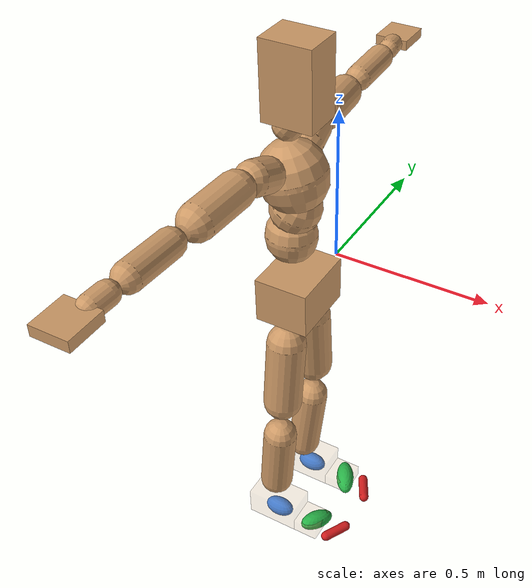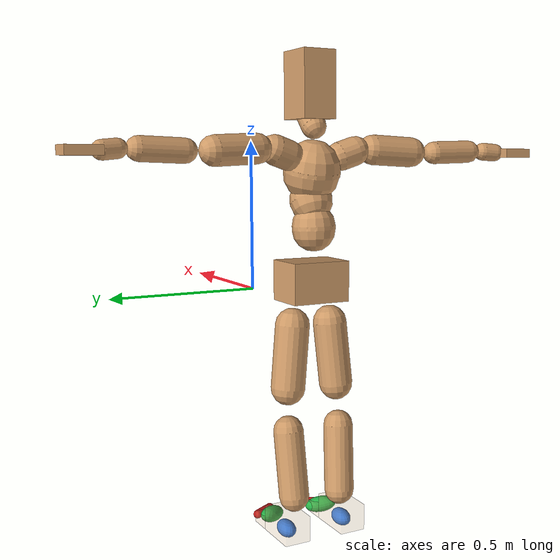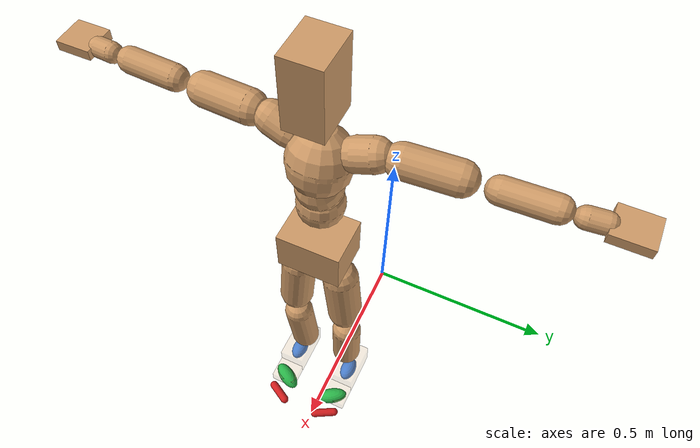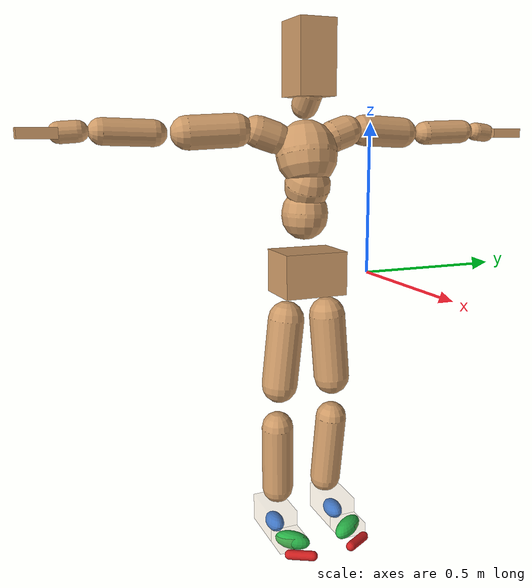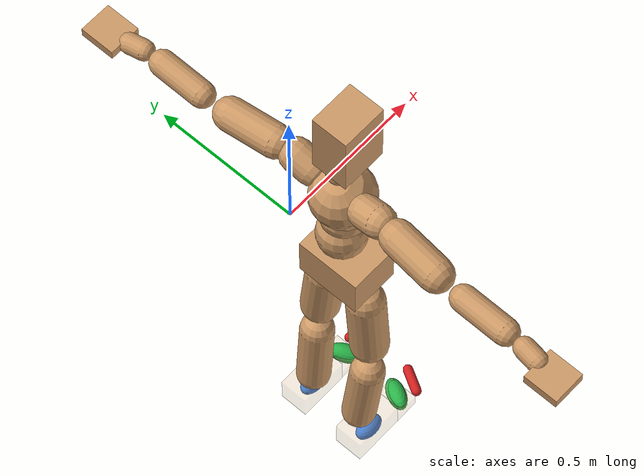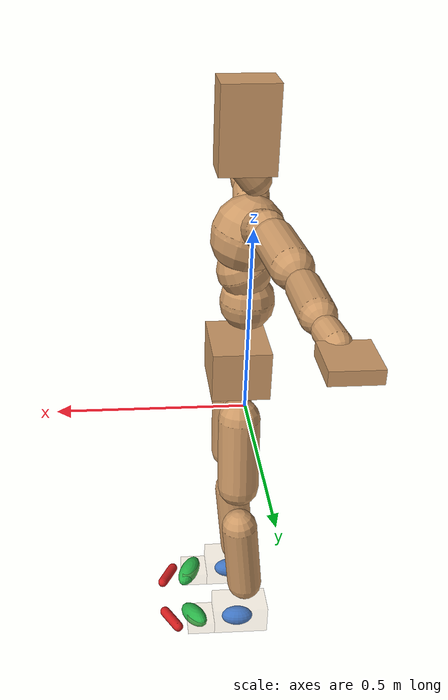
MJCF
<mujoco model="smpl_humanoid_elipsoid_foot_contact">
  <compiler angle="radian" coordinate="local" />
  <option
        timestep="0.001"
        integrator="implicitfast"
        solver="Newton"
        cone="elliptic"
        impratio="10"
        iterations="80"
        tolerance="1e-10"
        noslip_iterations="2"
    >
    <flag nativeccd="enable" multiccd="enable" />
  </option>
  <default>
    <joint damping="0.12" armature="0.0005" />
    <geom solref="0.012 1" solimp="0.90 0.98 0.0015 0.5 2" margin="0.0005" />
    <default class="elipsoid_foot_contact">
      <geom
                type="ellipsoid"
                density="0"
                condim="6"
                contype="1"
                conaffinity="2"
                friction="1.0 0.03 0.002"
                rgba="0.10 0.45 0.85 0.88"
            />
    </default>
    <default class="elipsoid_touch_site">
      <site type="box" group="3" rgba="0.9 0.2 0.1 0.18" />
    </default>
  </default>
  <asset>
    <texture
            type="skybox"
            builtin="gradient"
            rgb1=".4 .5 .6"
            rgb2="0 0 0"
            width="100"
            height="100"
        />
    <texture
            builtin="flat"
            height="1278"
            mark="cross"
            markrgb="1 1 1"
            name="texgeom"
            random="0.01"
            rgb1="0.8 0.6 0.4"
            rgb2="0.8 0.6 0.4"
            type="cube"
            width="127"
        />
    <texture
            builtin="checker"
            height="100"
            name="texplane"
            rgb1="0 0 0"
            rgb2="0.8 0.8 0.8"
            type="2d"
            width="100"
        />
    <material
            name="MatPlane"
            reflectance="0.5"
            shininess="1"
            specular="1"
            texrepeat="60 60"
            texture="texplane"
        />
    <material name="geom" texture="texgeom" texuniform="true" />
  </asset>
  <worldbody>
    <light
            cutoff="100"
            diffuse="1 1 1"
            dir="-0 0 -1.3"
            directional="true"
            exponent="1"
            pos="0 0 1.3"
            specular=".1 .1 .1"
        />
    <body name="Pelvis" pos="-0.0018 -0.2233 0.0282">
      <geom
                type="box"
                pos="-0.0055 -0.0000 -0.0121"
                size="0.083 0.1069 0.0722"
                quat="1.0000 0.0000 0.0000 0.0000"
                density="1000"
                conaffinity="1"
                condim="3"
                contype="7"
                margin="0.001"
                rgba="0.8 0.6 .4 1"
            />
      <body name="L_Hip" pos="-0.0068 0.0695 -0.0914">
        <joint
                    name="L_Hip_x"
                    type="hinge"
                    pos="0 0 0"
                    axis="1 0 0"
                    stiffness="800"
                    damping="80"
                    armature="0.02"
                    range="-180.0000 180.0000"
                    limited="true"
                />
        <joint
                    name="L_Hip_y"
                    type="hinge"
                    pos="0 0 0"
                    axis="0 1 0"
                    stiffness="800"
                    damping="80"
                    armature="0.02"
                    range="-180.0000 180.0000"
                    limited="true"
                />
        <joint
                    name="L_Hip_z"
                    type="hinge"
                    pos="0 0 0"
                    axis="0 0 1"
                    stiffness="800"
                    damping="80"
                    armature="0.02"
                    range="-180.0000 180.0000"
                    limited="true"
                />
        <geom
                    type="capsule"
                    contype="1"
                    conaffinity="1"
                    density="2040.816327"
                    fromto="-0.0009 0.0069 -0.0750 -0.0036 0.0274 -0.3002"
                    size="0.0615"
                    condim="3"
                    margin="0.001"
                    rgba="0.8 0.6 .4 1"
                />
        <body name="L_Knee" pos="-0.0045 0.0343 -0.3752">
          <joint
                        name="L_Knee_x"
                        type="hinge"
                        pos="0 0 0"
                        axis="1 0 0"
                        stiffness="800"
                        damping="80"
                        armature="0.02"
                        range="-180.0000 180.0000"
                        limited="true"
                    />
          <joint
                        name="L_Knee_y"
                        type="hinge"
                        pos="0 0 0"
                        axis="0 1 0"
                        stiffness="800"
                        damping="80"
                        armature="0.02"
                        range="-180.0000 180.0000"
                        limited="true"
                    />
          <joint
                        name="L_Knee_z"
                        type="hinge"
                        pos="0 0 0"
                        axis="0 0 1"
                        stiffness="800"
                        damping="80"
                        armature="0.02"
                        range="-180.0000 180.0000"
                        limited="true"
                    />
          <geom
                        type="capsule"
                        contype="1"
                        conaffinity="1"
                        density="1234.567901"
                        fromto="-0.0087 -0.0027 -0.0796 -0.0350 -0.0109 -0.3184"
                        size="0.0541"
                        condim="3"
                        margin="0.001"
                        rgba="0.8 0.6 .4 1"
                    />
          <body name="L_Ankle" pos="-0.0437 -0.0136 -0.398">
            <joint
                            name="L_Ankle_x"
                            type="hinge"
                            pos="0 0 0"
                            axis="1 0 0"
                            stiffness="800"
                            damping="80"
                            armature="0.02"
                            range="-180.0000 180.0000"
                            limited="true"
                        />
            <joint
                            name="L_Ankle_y"
                            type="hinge"
                            pos="0 0 0"
                            axis="0 1 0"
                            stiffness="800"
                            damping="80"
                            armature="0.02"
                            range="-180.0000 180.0000"
                            limited="true"
                        />
            <joint
                            name="L_Ankle_z"
                            type="hinge"
                            pos="0 0 0"
                            axis="0 0 1"
                            stiffness="800"
                            damping="80"
                            armature="0.02"
                            range="-180.0000 180.0000"
                            limited="true"
                        />
            <geom
                            name="L_foot_inertial_visual"
                            type="box"
                            pos="0.0242 0.0233 -0.0239"
                            size="0.085 0.0483 0.0464"
                            quat="1.0000 0.0000 0.0000 0.0000"
                            density="1000"
                            conaffinity="0"
                            condim="3"
                            contype="0"
                            margin="0.001"
                            rgba="0.8 0.6 .4 0.18"
                        />
            <body name="L_elipsoid_foot_segment" pos="0.00000 0.02400 -0.03000">
              <inertial
                                pos="0.00000 -0.01000 0.02800"
                                mass="0.55"
                                diaginertia="0.0012 0.0026 0.0021"
                            />

              <geom
                                name="L_heel_ellipsoid"
                                class="elipsoid_foot_contact"
                                pos="0.03000 0.00000 -0.01500"
                                quat="0.70512 0.05298 0.05298 -0.70512"
                                size="0.030 0.050 0.030"
                                rgba="0.18 0.48 0.90 0.90"
                            />

              <geom
                                name="L_ball_ellipsoid"
                                class="elipsoid_foot_contact"
                                pos="0.17000 -0.01000 -0.01366"
                                quat="0.85577 0.08586 0.05093 -0.50763"
                                size="0.060 0.030 0.030"
                                rgba="0.16 0.70 0.28 0.90"
                            />

              <site
                                name="L_heel_touch"
                                class="elipsoid_touch_site"
                                pos="0.03000 0.00000 -0.03100"
                                size="0.050 0.070 0.004"
                            />
              <site
                                name="L_ball_touch"
                                class="elipsoid_touch_site"
                                pos="0.17000 -0.01000 -0.03100"
                                size="0.080 0.055 0.004"
                            />

              <body
                                name="L_elipsoid_toe_segment"
                                pos="0.20000 0.00000 -0.01400"
                            >
                <joint
                                    name="L_toe_hinge"
                                    type="hinge"
                                    axis="0 -1 0"
                                    range="-0.8 0.7"
                                    limited="true"
                                    damping="0.18"
                                    armature="0.0004"
                                />
                <inertial
                                    pos="0.05000 0.00000 0.00200"
                                    mass="0.12"
                                    diaginertia="0.00018 0.00045 0.00038"
                                />

                <geom
                                    name="L_toe_capsule"
                                    class="elipsoid_foot_contact"
                                    type="capsule"
                                    fromto="0.02500 0.02400 -0.01500  0.06300 -0.04400 -0.01500"
                                    size="0.016"
                                    rgba="0.82 0.12 0.12 0.90"
                                />

                <site
                                    name="L_toe_touch"
                                    class="elipsoid_touch_site"
                                    pos="0.04400 -0.01000 -0.03100"
                                    size="0.040 0.060 0.004"
                                />
              </body>
            </body>
            <body name="L_Toe" pos="0.1193 0.0264 -0.0558">
              <joint
                                name="L_Toe_x"
                                type="hinge"
                                pos="0 0 0"
                                axis="1 0 0"
                                stiffness="500"
                                damping="50"
                                armature="0.02"
                                range="-180.0000 180.0000"
                                limited="true"
                            />
              <joint
                                name="L_Toe_y"
                                type="hinge"
                                pos="0 0 0"
                                axis="0 1 0"
                                stiffness="500"
                                damping="50"
                                armature="0.02"
                                range="-180.0000 180.0000"
                                limited="true"
                            />
              <joint
                                name="L_Toe_z"
                                type="hinge"
                                pos="0 0 0"
                                axis="0 0 1"
                                stiffness="500"
                                damping="50"
                                armature="0.02"
                                range="-180.0000 180.0000"
                                limited="true"
                            />
              <geom
                                name="L_toe_inertial_visual"
                                type="box"
                                pos="0.0248 -0.0030 0.0055"
                                size="0.0496 0.0478 0.02"
                                quat="1.0000 0.0000 0.0000 0.0000"
                                density="1000"
                                conaffinity="0"
                                condim="3"
                                contype="0"
                                margin="0.001"
                                rgba="0.8 0.6 .4 0.12"
                            />
            </body>
          </body>
        </body>
      </body>
      <body name="R_Hip" pos="-0.0043 -0.0677 -0.0905">
        <joint
                    name="R_Hip_x"
                    type="hinge"
                    pos="0 0 0"
                    axis="1 0 0"
                    stiffness="800"
                    damping="80"
                    armature="0.02"
                    range="-180.0000 180.0000"
                    limited="true"
                />
        <joint
                    name="R_Hip_y"
                    type="hinge"
                    pos="0 0 0"
                    axis="0 1 0"
                    stiffness="800"
                    damping="80"
                    armature="0.02"
                    range="-180.0000 180.0000"
                    limited="true"
                />
        <joint
                    name="R_Hip_z"
                    type="hinge"
                    pos="0 0 0"
                    axis="0 0 1"
                    stiffness="800"
                    damping="80"
                    armature="0.02"
                    range="-180.0000 180.0000"
                    limited="true"
                />
        <geom
                    type="capsule"
                    contype="1"
                    conaffinity="1"
                    density="2040.816327"
                    fromto="-0.0018 -0.0077 -0.0765 -0.0071 -0.0306 -0.3061"
                    size="0.0606"
                    condim="3"
                    margin="0.001"
                    rgba="0.8 0.6 .4 1"
                />
        <body name="R_Knee" pos="-0.0089 -0.0383 -0.3826">
          <joint
                        name="R_Knee_x"
                        type="hinge"
                        pos="0 0 0"
                        axis="1 0 0"
                        stiffness="800"
                        damping="80"
                        armature="0.02"
                        range="-180.0000 180.0000"
                        limited="true"
                    />
          <joint
                        name="R_Knee_y"
                        type="hinge"
                        pos="0 0 0"
                        axis="0 1 0"
                        stiffness="800"
                        damping="80"
                        armature="0.02"
                        range="-180.0000 180.0000"
                        limited="true"
                    />
          <joint
                        name="R_Knee_z"
                        type="hinge"
                        pos="0 0 0"
                        axis="0 0 1"
                        stiffness="800"
                        damping="80"
                        armature="0.02"
                        range="-180.0000 180.0000"
                        limited="true"
                    />
          <geom
                        type="capsule"
                        contype="1"
                        conaffinity="1"
                        density="1234.567901"
                        fromto="-0.0085 0.0032 -0.0797 -0.0338 0.0126 -0.3187"
                        size="0.0541"
                        condim="3"
                        margin="0.001"
                        rgba="0.8 0.6 .4 1"
                    />
          <body name="R_Ankle" pos="-0.0423 0.0158 -0.3984">
            <joint
                            name="R_Ankle_x"
                            type="hinge"
                            pos="0 0 0"
                            axis="1 0 0"
                            stiffness="800"
                            damping="80"
                            armature="0.02"
                            range="-180.0000 180.0000"
                            limited="true"
                        />
            <joint
                            name="R_Ankle_y"
                            type="hinge"
                            pos="0 0 0"
                            axis="0 1 0"
                            stiffness="800"
                            damping="80"
                            armature="0.02"
                            range="-180.0000 180.0000"
                            limited="true"
                        />
            <joint
                            name="R_Ankle_z"
                            type="hinge"
                            pos="0 0 0"
                            axis="0 0 1"
                            stiffness="800"
                            damping="80"
                            armature="0.02"
                            range="-180.0000 180.0000"
                            limited="true"
                        />
            <geom
                            name="R_foot_inertial_visual"
                            type="box"
                            pos="0.0256 -0.0212 -0.0174"
                            size="0.0865 0.0483 0.0478"
                            quat="1.0000 0.0000 0.0000 0.0000"
                            density="1000"
                            conaffinity="0"
                            condim="3"
                            contype="0"
                            margin="0.001"
                            rgba="0.8 0.6 .4 0.18"
                        />
            <body
                            name="R_elipsoid_foot_segment"
                            pos="0.00000 -0.02400 -0.02500"
                        >
              <inertial
                                pos="0.00000 0.01000 0.02800"
                                mass="0.55"
                                diaginertia="0.0012 0.0026 0.0021"
                            />

              <geom
                                name="R_heel_ellipsoid"
                                class="elipsoid_foot_contact"
                                pos="0.03000 0.00000 -0.01500"
                                quat="0.70512 -0.05298 0.05298 0.70512"
                                size="0.030 0.050 0.030"
                                rgba="0.18 0.48 0.90 0.90"
                            />

              <geom
                                name="R_ball_ellipsoid"
                                class="elipsoid_foot_contact"
                                pos="0.17000 0.01000 -0.01366"
                                quat="0.85577 -0.08586 0.05093 0.50763"
                                size="0.060 0.030 0.030"
                                rgba="0.16 0.70 0.28 0.90"
                            />

              <site
                                name="R_heel_touch"
                                class="elipsoid_touch_site"
                                pos="0.03000 0.00000 -0.03100"
                                size="0.050 0.070 0.004"
                            />
              <site
                                name="R_ball_touch"
                                class="elipsoid_touch_site"
                                pos="0.17000 0.01000 -0.03100"
                                size="0.080 0.055 0.004"
                            />

              <body
                                name="R_elipsoid_toe_segment"
                                pos="0.20000 0.00000 -0.01400"
                            >
                <joint
                                    name="R_toe_hinge"
                                    type="hinge"
                                    axis="0 1 0"
                                    range="-0.8 0.7"
                                    limited="true"
                                    damping="0.18"
                                    armature="0.0004"
                                />
                <inertial
                                    pos="0.05000 0.00000 0.00200"
                                    mass="0.12"
                                    diaginertia="0.00018 0.00045 0.00038"
                                />

                <geom
                                    name="R_toe_capsule"
                                    class="elipsoid_foot_contact"
                                    type="capsule"
                                    fromto="0.02500 -0.02400 -0.01500  0.06300 0.04400 -0.01500"
                                    size="0.016"
                                    rgba="0.82 0.12 0.12 0.90"
                                />

                <site
                                    name="R_toe_touch"
                                    class="elipsoid_touch_site"
                                    pos="0.04400 0.01000 -0.03100"
                                    size="0.040 0.060 0.004"
                                />
              </body>
            </body>
            <body name="R_Toe" pos="0.1233 -0.0254 -0.0481">
              <joint
                                name="R_Toe_x"
                                type="hinge"
                                pos="0 0 0"
                                axis="1 0 0"
                                stiffness="500"
                                damping="50"
                                armature="0.02"
                                range="-180.0000 180.0000"
                                limited="true"
                            />
              <joint
                                name="R_Toe_y"
                                type="hinge"
                                pos="0 0 0"
                                axis="0 1 0"
                                stiffness="500"
                                damping="50"
                                armature="0.02"
                                range="-180.0000 180.0000"
                                limited="true"
                            />
              <joint
                                name="R_Toe_z"
                                type="hinge"
                                pos="0 0 0"
                                axis="0 0 1"
                                stiffness="500"
                                damping="50"
                                armature="0.02"
                                range="-180.0000 180.0000"
                                limited="true"
                            />
              <geom
                                name="R_toe_inertial_visual"
                                type="box"
                                pos="0.0227 0.0042 0.0045"
                                size="0.0493 0.0479 0.0216"
                                quat="1.0000 0.0000 0.0000 0.0000"
                                density="1000"
                                conaffinity="0"
                                condim="3"
                                contype="0"
                                margin="0.001"
                                rgba="0.8 0.6 .4 0.12"
                            />
            </body>
          </body>
        </body>
      </body>
      <body name="Torso" pos="-0.0267 -0.0025 0.109">
        <joint
                    name="Torso_x"
                    type="hinge"
                    pos="0 0 0"
                    axis="1 0 0"
                    stiffness="1000"
                    damping="100"
                    armature="0.02"
                    range="-180.0000 180.0000"
                    limited="true"
                />
        <joint
                    name="Torso_y"
                    type="hinge"
                    pos="0 0 0"
                    axis="0 1 0"
                    stiffness="1000"
                    damping="100"
                    armature="0.02"
                    range="-180.0000 180.0000"
                    limited="true"
                />
        <joint
                    name="Torso_z"
                    type="hinge"
                    pos="0 0 0"
                    axis="0 0 1"
                    stiffness="1000"
                    damping="100"
                    armature="0.02"
                    range="-180.0000 180.0000"
                    limited="true"
                />
        <geom
                    type="capsule"
                    contype="1"
                    conaffinity="1"
                    density="2040.816327"
                    fromto="0.0005 0.0025 0.0608 0.0006 0.0030 0.0743"
                    size="0.0769"
                    condim="3"
                    margin="0.001"
                    rgba="0.8 0.6 .4 1"
                />
        <body name="Spine" pos="0.0011 0.0055 0.1352">
          <joint
                        name="Spine_x"
                        type="hinge"
                        pos="0 0 0"
                        axis="1 0 0"
                        stiffness="1000"
                        damping="100"
                        armature="0.02"
                        range="-180.0000 180.0000"
                        limited="true"
                    />
          <joint
                        name="Spine_y"
                        type="hinge"
                        pos="0 0 0"
                        axis="0 1 0"
                        stiffness="1000"
                        damping="100"
                        armature="0.02"
                        range="-180.0000 180.0000"
                        limited="true"
                    />
          <joint
                        name="Spine_z"
                        type="hinge"
                        pos="0 0 0"
                        axis="0 0 1"
                        stiffness="1000"
                        damping="100"
                        armature="0.02"
                        range="-180.0000 180.0000"
                        limited="true"
                    />
          <geom
                        type="capsule"
                        contype="1"
                        conaffinity="1"
                        density="2040.816327"
                        fromto="0.0114 0.0007 0.0238 0.0140 0.0008 0.0291"
                        size="0.0755"
                        condim="3"
                        margin="0.001"
                        rgba="0.8 0.6 .4 1"
                    />
          <body name="Chest" pos="0.0254 0.0015 0.0529">
            <joint
                            name="Chest_x"
                            type="hinge"
                            pos="0 0 0"
                            axis="1 0 0"
                            stiffness="1000"
                            damping="100"
                            armature="0.02"
                            range="-180.0000 180.0000"
                            limited="true"
                        />
            <joint
                            name="Chest_y"
                            type="hinge"
                            pos="0 0 0"
                            axis="0 1 0"
                            stiffness="1000"
                            damping="100"
                            armature="0.02"
                            range="-180.0000 180.0000"
                            limited="true"
                        />
            <joint
                            name="Chest_z"
                            type="hinge"
                            pos="0 0 0"
                            axis="0 0 1"
                            stiffness="1000"
                            damping="100"
                            armature="0.02"
                            range="-180.0000 180.0000"
                            limited="true"
                        />
            <geom
                            type="capsule"
                            contype="1"
                            conaffinity="1"
                            density="2040.816327"
                            fromto="-0.0173 -0.0009 0.0682 -0.0212 -0.0010 0.0833"
                            size="0.1002"
                            condim="3"
                            margin="0.001"
                            rgba="0.8 0.6 .4 1"
                        />
            <body name="Neck" pos="-0.0429 -0.0028 0.2139">
              <joint
                                name="Neck_x"
                                type="hinge"
                                pos="0 0 0"
                                axis="1 0 0"
                                stiffness="500"
                                damping="50"
                                armature="0.02"
                                range="-180.0000 180.0000"
                                limited="true"
                            />
              <joint
                                name="Neck_y"
                                type="hinge"
                                pos="0 0 0"
                                axis="0 1 0"
                                stiffness="500"
                                damping="50"
                                armature="0.02"
                                range="-180.0000 180.0000"
                                limited="true"
                            />
              <joint
                                name="Neck_z"
                                type="hinge"
                                pos="0 0 0"
                                axis="0 0 1"
                                stiffness="500"
                                damping="50"
                                armature="0.02"
                                range="-180.0000 180.0000"
                                limited="true"
                            />
              <geom
                                type="capsule"
                                contype="1"
                                conaffinity="1"
                                density="1000"
                                fromto="0.0103 0.0010 0.0130 0.0411 0.0041 0.0520"
                                size="0.0436"
                                condim="3"
                                margin="0.001"
                                rgba="0.8 0.6 .4 1"
                            />
              <body name="Head" pos="0.0513 0.0052 0.065">
                <joint
                                    name="Head_x"
                                    type="hinge"
                                    pos="0 0 0"
                                    axis="1 0 0"
                                    stiffness="500"
                                    damping="50"
                                    armature="0.02"
                                    range="-180.0000 180.0000"
                                    limited="true"
                                />
                <joint
                                    name="Head_y"
                                    type="hinge"
                                    pos="0 0 0"
                                    axis="0 1 0"
                                    stiffness="500"
                                    damping="50"
                                    armature="0.02"
                                    range="-180.0000 180.0000"
                                    limited="true"
                                />
                <joint
                                    name="Head_z"
                                    type="hinge"
                                    pos="0 0 0"
                                    axis="0 0 1"
                                    stiffness="500"
                                    damping="50"
                                    armature="0.02"
                                    range="-180.0000 180.0000"
                                    limited="true"
                                />
                <geom
                                    type="box"
                                    pos="-0.0116 -0.0042 0.0876"
                                    size="0.076 0.0606 0.1154"
                                    quat="1.0000 0.0000 0.0000 0.0000"
                                    density="1000"
                                    conaffinity="1"
                                    condim="3"
                                    contype="7"
                                    margin="0.001"
                                    rgba="0.8 0.6 .4 1"
                                />
              </body>
            </body>
            <body name="L_Thorax" pos="-0.0341 0.0788 0.1217">
              <joint
                                name="L_Thorax_x"
                                type="hinge"
                                pos="0 0 0"
                                axis="1 0 0"
                                stiffness="500"
                                damping="50"
                                armature="0.02"
                                range="-180.0000 180.0000"
                                limited="true"
                            />
              <joint
                                name="L_Thorax_y"
                                type="hinge"
                                pos="0 0 0"
                                axis="0 1 0"
                                stiffness="500"
                                damping="50"
                                armature="0.02"
                                range="-180.0000 180.0000"
                                limited="true"
                            />
              <joint
                                name="L_Thorax_z"
                                type="hinge"
                                pos="0 0 0"
                                axis="0 0 1"
                                stiffness="500"
                                damping="50"
                                armature="0.02"
                                range="-180.0000 180.0000"
                                limited="true"
                            />
              <geom
                                type="capsule"
                                contype="1"
                                conaffinity="1"
                                density="1000"
                                fromto="-0.0018 0.0182 0.0061 -0.0071 0.0728 0.0244"
                                size="0.0521"
                                condim="3"
                                margin="0.001"
                                rgba="0.8 0.6 .4 1"
                            />
              <body name="L_Shoulder" pos="-0.0089 0.091 0.0305">
                <joint
                                    name="L_Shoulder_x"
                                    type="hinge"
                                    pos="0 0 0"
                                    axis="1 0 0"
                                    stiffness="500"
                                    damping="50"
                                    armature="0.02"
                                    range="-180.0000 180.0000"
                                    limited="true"
                                />
                <joint
                                    name="L_Shoulder_y"
                                    type="hinge"
                                    pos="0 0 0"
                                    axis="0 1 0"
                                    stiffness="500"
                                    damping="50"
                                    armature="0.02"
                                    range="-180.0000 180.0000"
                                    limited="true"
                                />
                <joint
                                    name="L_Shoulder_z"
                                    type="hinge"
                                    pos="0 0 0"
                                    axis="0 0 1"
                                    stiffness="500"
                                    damping="50"
                                    armature="0.02"
                                    range="-180.0000 180.0000"
                                    limited="true"
                                />
                <geom
                                    type="capsule"
                                    contype="1"
                                    conaffinity="1"
                                    density="1000"
                                    fromto="-0.0055 0.0519 -0.0026 -0.0220 0.2077 -0.0102"
                                    size="0.0517"
                                    condim="3"
                                    margin="0.001"
                                    rgba="0.8 0.6 .4 1"
                                />
                <body name="L_Elbow" pos="-0.0275 0.2596 -0.0128">
                  <joint
                                        name="L_Elbow_x"
                                        type="hinge"
                                        pos="0 0 0"
                                        axis="1 0 0"
                                        stiffness="500"
                                        damping="50"
                                        armature="0.02"
                                        range="-180.0000 180.0000"
                                        limited="true"
                                    />
                  <joint
                                        name="L_Elbow_y"
                                        type="hinge"
                                        pos="0 0 0"
                                        axis="0 1 0"
                                        stiffness="500"
                                        damping="50"
                                        armature="0.02"
                                        range="-180.0000 180.0000"
                                        limited="true"
                                    />
                  <joint
                                        name="L_Elbow_z"
                                        type="hinge"
                                        pos="0 0 0"
                                        axis="0 0 1"
                                        stiffness="500"
                                        damping="50"
                                        armature="0.02"
                                        range="-180.0000 180.0000"
                                        limited="true"
                                    />
                  <geom
                                        type="capsule"
                                        contype="1"
                                        conaffinity="1"
                                        density="1000"
                                        fromto="-0.0002 0.0498 0.0018 -0.0009 0.1994 0.0072"
                                        size="0.0405"
                                        condim="3"
                                        margin="0.001"
                                        rgba="0.8 0.6 .4 1"
                                    />
                  <body name="L_Wrist" pos="-0.0012 0.2492 0.009">
                    <joint
                                            name="L_Wrist_x"
                                            type="hinge"
                                            pos="0 0 0"
                                            axis="1 0 0"
                                            stiffness="300"
                                            damping="30"
                                            armature="0.02"
                                            range="-180.0000 180.0000"
                                            limited="true"
                                        />
                    <joint
                                            name="L_Wrist_y"
                                            type="hinge"
                                            pos="0 0 0"
                                            axis="0 1 0"
                                            stiffness="300"
                                            damping="30"
                                            armature="0.02"
                                            range="-180.0000 180.0000"
                                            limited="true"
                                        />
                    <joint
                                            name="L_Wrist_z"
                                            type="hinge"
                                            pos="0 0 0"
                                            axis="0 0 1"
                                            stiffness="300"
                                            damping="30"
                                            armature="0.02"
                                            range="-180.0000 180.0000"
                                            limited="true"
                                        />
                    <geom
                                            type="capsule"
                                            contype="1"
                                            conaffinity="1"
                                            density="1000"
                                            fromto="-0.0030 0.0168 -0.0016 -0.0120 0.0672 -0.0065"
                                            size="0.0318"
                                            condim="3"
                                            margin="0.001"
                                            rgba="0.8 0.6 .4 1"
                                        />
                    <body name="L_Hand" pos="-0.0149 0.084 -0.0082">
                      <joint
                                                name="L_Hand_x"
                                                type="hinge"
                                                pos="0 0 0"
                                                axis="1 0 0"
                                                stiffness="300"
                                                damping="30"
                                                armature="0.02"
                                                range="-180.0000 180.0000"
                                                limited="true"
                                            />
                      <joint
                                                name="L_Hand_y"
                                                type="hinge"
                                                pos="0 0 0"
                                                axis="0 1 0"
                                                stiffness="300"
                                                damping="30"
                                                armature="0.02"
                                                range="-180.0000 180.0000"
                                                limited="true"
                                            />
                      <joint
                                                name="L_Hand_z"
                                                type="hinge"
                                                pos="0 0 0"
                                                axis="0 0 1"
                                                stiffness="300"
                                                damping="30"
                                                armature="0.02"
                                                range="-180.0000 180.0000"
                                                limited="true"
                                            />
                      <geom
                                                type="box"
                                                pos="-0.0058 0.0493 0.0010"
                                                size="0.0538 0.0585 0.0158"
                                                quat="1.0000 0.0000 0.0000 0.0000"
                                                density="1000"
                                                conaffinity="1"
                                                condim="3"
                                                contype="7"
                                                margin="0.001"
                                                rgba="0.8 0.6 .4 1"
                                            />
                    </body>
                  </body>
                </body>
              </body>
            </body>
            <body name="R_Thorax" pos="-0.0386 -0.0818 0.1188">
              <joint
                                name="R_Thorax_x"
                                type="hinge"
                                pos="0 0 0"
                                axis="1 0 0"
                                stiffness="500"
                                damping="50"
                                armature="0.02"
                                range="-180.0000 180.0000"
                                limited="true"
                            />
              <joint
                                name="R_Thorax_y"
                                type="hinge"
                                pos="0 0 0"
                                axis="0 1 0"
                                stiffness="500"
                                damping="50"
                                armature="0.02"
                                range="-180.0000 180.0000"
                                limited="true"
                            />
              <joint
                                name="R_Thorax_z"
                                type="hinge"
                                pos="0 0 0"
                                axis="0 0 1"
                                stiffness="500"
                                damping="50"
                                armature="0.02"
                                range="-180.0000 180.0000"
                                limited="true"
                            />
              <geom
                                type="capsule"
                                contype="1"
                                conaffinity="1"
                                density="1000"
                                fromto="-0.0018 -0.0192 0.0065 -0.0073 -0.0768 0.0260"
                                size="0.0511"
                                condim="3"
                                margin="0.001"
                                rgba="0.8 0.6 .4 1"
                            />
              <body name="R_Shoulder" pos="-0.0091 -0.096 0.0326">
                <joint
                                    name="R_Shoulder_x"
                                    type="hinge"
                                    pos="0 0 0"
                                    axis="1 0 0"
                                    stiffness="500"
                                    damping="50"
                                    armature="0.02"
                                    range="-180.0000 180.0000"
                                    limited="true"
                                />
                <joint
                                    name="R_Shoulder_y"
                                    type="hinge"
                                    pos="0 0 0"
                                    axis="0 1 0"
                                    stiffness="500"
                                    damping="50"
                                    armature="0.02"
                                    range="-180.0000 180.0000"
                                    limited="true"
                                />
                <joint
                                    name="R_Shoulder_z"
                                    type="hinge"
                                    pos="0 0 0"
                                    axis="0 0 1"
                                    stiffness="500"
                                    damping="50"
                                    armature="0.02"
                                    range="-180.0000 180.0000"
                                    limited="true"
                                />
                <geom
                                    type="capsule"
                                    contype="1"
                                    conaffinity="1"
                                    density="1000"
                                    fromto="-0.0043 -0.0507 -0.0027 -0.0171 -0.2030 -0.0107"
                                    size="0.0531"
                                    condim="3"
                                    margin="0.001"
                                    rgba="0.8 0.6 .4 1"
                                />
                <body name="R_Elbow" pos="-0.0214 -0.2537 -0.0133">
                  <joint
                                        name="R_Elbow_x"
                                        type="hinge"
                                        pos="0 0 0"
                                        axis="1 0 0"
                                        stiffness="500"
                                        damping="50"
                                        armature="0.02"
                                        range="-180.0000 180.0000"
                                        limited="true"
                                    />
                  <joint
                                        name="R_Elbow_y"
                                        type="hinge"
                                        pos="0 0 0"
                                        axis="0 1 0"
                                        stiffness="500"
                                        damping="50"
                                        armature="0.02"
                                        range="-180.0000 180.0000"
                                        limited="true"
                                    />
                  <joint
                                        name="R_Elbow_z"
                                        type="hinge"
                                        pos="0 0 0"
                                        axis="0 0 1"
                                        stiffness="500"
                                        damping="50"
                                        armature="0.02"
                                        range="-180.0000 180.0000"
                                        limited="true"
                                    />
                  <geom
                                        type="capsule"
                                        contype="1"
                                        conaffinity="1"
                                        density="1000"
                                        fromto="-0.0011 -0.0511 0.0016 -0.0044 -0.2042 0.0062"
                                        size="0.0408"
                                        condim="3"
                                        margin="0.001"
                                        rgba="0.8 0.6 .4 1"
                                    />
                  <body name="R_Wrist" pos="-0.0056 -0.2553 0.0078">
                    <joint
                                            name="R_Wrist_x"
                                            type="hinge"
                                            pos="0 0 0"
                                            axis="1 0 0"
                                            stiffness="300"
                                            damping="30"
                                            armature="0.02"
                                            range="-180.0000 180.0000"
                                            limited="true"
                                        />
                    <joint
                                            name="R_Wrist_y"
                                            type="hinge"
                                            pos="0 0 0"
                                            axis="0 1 0"
                                            stiffness="300"
                                            damping="30"
                                            armature="0.02"
                                            range="-180.0000 180.0000"
                                            limited="true"
                                        />
                    <joint
                                            name="R_Wrist_z"
                                            type="hinge"
                                            pos="0 0 0"
                                            axis="0 0 1"
                                            stiffness="300"
                                            damping="30"
                                            armature="0.02"
                                            range="-180.0000 180.0000"
                                            limited="true"
                                        />
                    <geom
                                            type="capsule"
                                            contype="1"
                                            conaffinity="1"
                                            density="1000"
                                            fromto="-0.0021 -0.0169 -0.0012 -0.0083 -0.0677 -0.0049"
                                            size="0.0326"
                                            condim="3"
                                            margin="0.001"
                                            rgba="0.8 0.6 .4 1"
                                        />
                    <body name="R_Hand" pos="-0.0103 -0.0846 -0.0061">
                      <joint
                                                name="R_Hand_x"
                                                type="hinge"
                                                pos="0 0 0"
                                                axis="1 0 0"
                                                stiffness="300"
                                                damping="30"
                                                armature="0.02"
                                                range="-180.0000 180.0000"
                                                limited="true"
                                            />
                      <joint
                                                name="R_Hand_y"
                                                type="hinge"
                                                pos="0 0 0"
                                                axis="0 1 0"
                                                stiffness="300"
                                                damping="30"
                                                armature="0.02"
                                                range="-180.0000 180.0000"
                                                limited="true"
                                            />
                      <joint
                                                name="R_Hand_z"
                                                type="hinge"
                                                pos="0 0 0"
                                                axis="0 0 1"
                                                stiffness="300"
                                                damping="30"
                                                armature="0.02"
                                                range="-180.0000 180.0000"
                                                limited="true"
                                            />
                      <geom
                                                type="box"
                                                pos="-0.0079 -0.0462 -0.0009"
                                                size="0.0546 0.0569 0.0164"
                                                quat="1.0000 0.0000 0.0000 0.0000"
                                                density="1000"
                                                conaffinity="1"
                                                condim="3"
                                                contype="7"
                                                margin="0.001"
                                                rgba="0.8 0.6 .4 1"
                                            />
                    </body>
                  </body>
                </body>
              </body>
            </body>
          </body>
        </body>
      </body>
    <joint
                type="free"
                name="Pelvis"
                limited="false"
                actuatorfrclimited="false"
            /></body>
  </worldbody>
  <actuator>
    <motor name="L_Hip_x" joint="L_Hip_x" gear="500" />
    <motor name="L_Hip_y" joint="L_Hip_y" gear="500" />
    <motor name="L_Hip_z" joint="L_Hip_z" gear="500" />
    <motor name="L_Knee_x" joint="L_Knee_x" gear="500" />
    <motor name="L_Knee_y" joint="L_Knee_y" gear="500" />
    <motor name="L_Knee_z" joint="L_Knee_z" gear="500" />
    <motor name="L_Ankle_x" joint="L_Ankle_x" gear="500" />
    <motor name="L_Ankle_y" joint="L_Ankle_y" gear="500" />
    <motor name="L_Ankle_z" joint="L_Ankle_z" gear="500" />
    <motor name="L_Toe_x" joint="L_Toe_x" gear="500" />
    <motor name="L_Toe_y" joint="L_Toe_y" gear="500" />
    <motor name="L_Toe_z" joint="L_Toe_z" gear="500" />
    <motor name="R_Hip_x" joint="R_Hip_x" gear="500" />
    <motor name="R_Hip_y" joint="R_Hip_y" gear="500" />
    <motor name="R_Hip_z" joint="R_Hip_z" gear="500" />
    <motor name="R_Knee_x" joint="R_Knee_x" gear="500" />
    <motor name="R_Knee_y" joint="R_Knee_y" gear="500" />
    <motor name="R_Knee_z" joint="R_Knee_z" gear="500" />
    <motor name="R_Ankle_x" joint="R_Ankle_x" gear="500" />
    <motor name="R_Ankle_y" joint="R_Ankle_y" gear="500" />
    <motor name="R_Ankle_z" joint="R_Ankle_z" gear="500" />
    <motor name="R_Toe_x" joint="R_Toe_x" gear="500" />
    <motor name="R_Toe_y" joint="R_Toe_y" gear="500" />
    <motor name="R_Toe_z" joint="R_Toe_z" gear="500" />
    <motor name="Torso_x" joint="Torso_x" gear="500" />
    <motor name="Torso_y" joint="Torso_y" gear="500" />
    <motor name="Torso_z" joint="Torso_z" gear="500" />
    <motor name="Spine_x" joint="Spine_x" gear="500" />
    <motor name="Spine_y" joint="Spine_y" gear="500" />
    <motor name="Spine_z" joint="Spine_z" gear="500" />
    <motor name="Chest_x" joint="Chest_x" gear="500" />
    <motor name="Chest_y" joint="Chest_y" gear="500" />
    <motor name="Chest_z" joint="Chest_z" gear="500" />
    <motor name="Neck_x" joint="Neck_x" gear="500" />
    <motor name="Neck_y" joint="Neck_y" gear="500" />
    <motor name="Neck_z" joint="Neck_z" gear="500" />
    <motor name="Head_x" joint="Head_x" gear="500" />
    <motor name="Head_y" joint="Head_y" gear="500" />
    <motor name="Head_z" joint="Head_z" gear="500" />
    <motor name="L_Thorax_x" joint="L_Thorax_x" gear="500" />
    <motor name="L_Thorax_y" joint="L_Thorax_y" gear="500" />
    <motor name="L_Thorax_z" joint="L_Thorax_z" gear="500" />
    <motor name="L_Shoulder_x" joint="L_Shoulder_x" gear="500" />
    <motor name="L_Shoulder_y" joint="L_Shoulder_y" gear="500" />
    <motor name="L_Shoulder_z" joint="L_Shoulder_z" gear="500" />
    <motor name="L_Elbow_x" joint="L_Elbow_x" gear="500" />
    <motor name="L_Elbow_y" joint="L_Elbow_y" gear="500" />
    <motor name="L_Elbow_z" joint="L_Elbow_z" gear="500" />
    <motor name="L_Wrist_x" joint="L_Wrist_x" gear="500" />
    <motor name="L_Wrist_y" joint="L_Wrist_y" gear="500" />
    <motor name="L_Wrist_z" joint="L_Wrist_z" gear="500" />
    <motor name="L_Hand_x" joint="L_Hand_x" gear="500" />
    <motor name="L_Hand_y" joint="L_Hand_y" gear="500" />
    <motor name="L_Hand_z" joint="L_Hand_z" gear="500" />
    <motor name="R_Thorax_x" joint="R_Thorax_x" gear="500" />
    <motor name="R_Thorax_y" joint="R_Thorax_y" gear="500" />
    <motor name="R_Thorax_z" joint="R_Thorax_z" gear="500" />
    <motor name="R_Shoulder_x" joint="R_Shoulder_x" gear="500" />
    <motor name="R_Shoulder_y" joint="R_Shoulder_y" gear="500" />
    <motor name="R_Shoulder_z" joint="R_Shoulder_z" gear="500" />
    <motor name="R_Elbow_x" joint="R_Elbow_x" gear="500" />
    <motor name="R_Elbow_y" joint="R_Elbow_y" gear="500" />
    <motor name="R_Elbow_z" joint="R_Elbow_z" gear="500" />
    <motor name="R_Wrist_x" joint="R_Wrist_x" gear="500" />
    <motor name="R_Wrist_y" joint="R_Wrist_y" gear="500" />
    <motor name="R_Wrist_z" joint="R_Wrist_z" gear="500" />
    <motor name="R_Hand_x" joint="R_Hand_x" gear="500" />
    <motor name="R_Hand_y" joint="R_Hand_y" gear="500" />
    <motor name="R_Hand_z" joint="R_Hand_z" gear="500" />
  </actuator>
  <contact>
    <exclude body1="Torso" body2="Chest" />
    <exclude body1="Head" body2="Chest" />
    <exclude body1="R_Knee" body2="R_Toe" />
    <exclude body1="R_Knee" body2="L_Ankle" />
    <exclude body1="R_Knee" body2="L_Toe" />
    <exclude body1="L_Knee" body2="L_Toe" />
    <exclude body1="L_Knee" body2="R_Ankle" />
    <exclude body1="L_Knee" body2="R_Toe" />
    <exclude body1="L_Shoulder" body2="Chest" />
    <exclude body1="R_Shoulder" body2="Chest" />
  </contact>
  <sensor>
    <touch name="L_heel_force" site="L_heel_touch" />
    <touch name="L_ball_force" site="L_ball_touch" />
    <touch name="L_toe_force" site="L_toe_touch" />
    <touch name="R_heel_force" site="R_heel_touch" />
    <touch name="R_ball_force" site="R_ball_touch" />
    <touch name="R_toe_force" site="R_toe_touch" />
  </sensor>
  <size njmax="700" nconmax="700" />
</mujoco>
